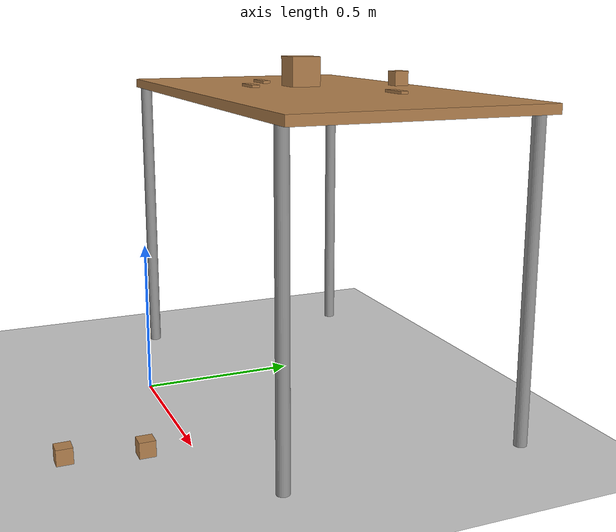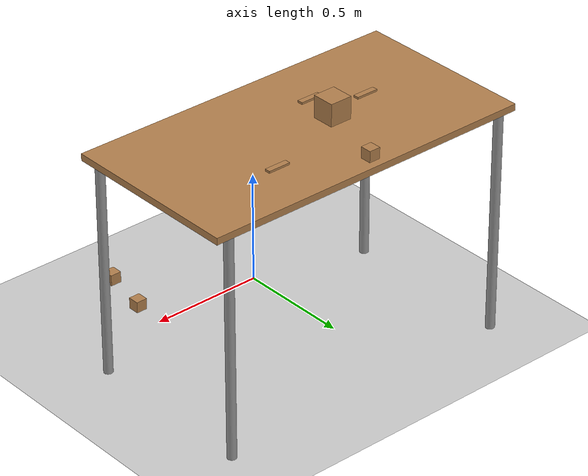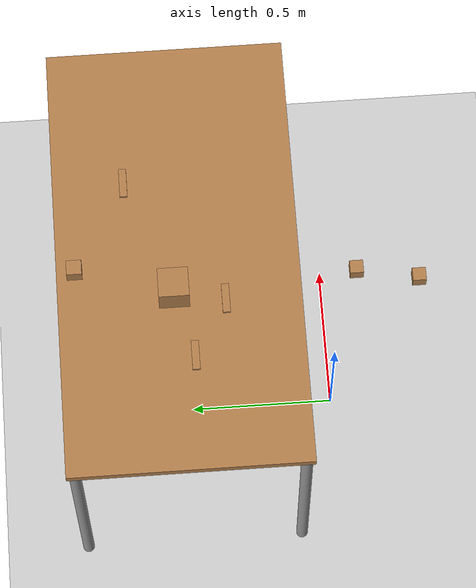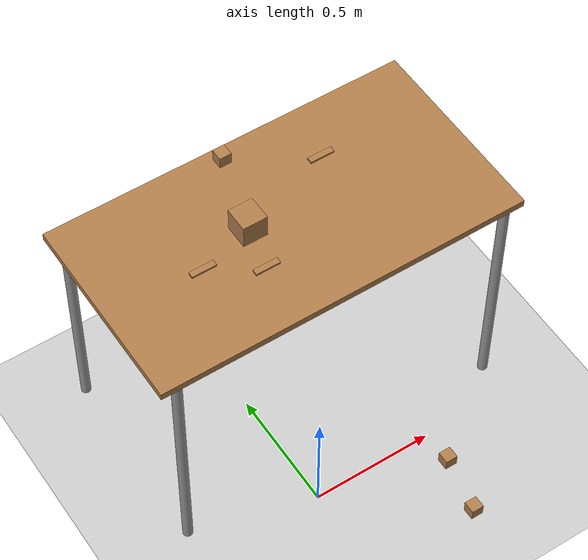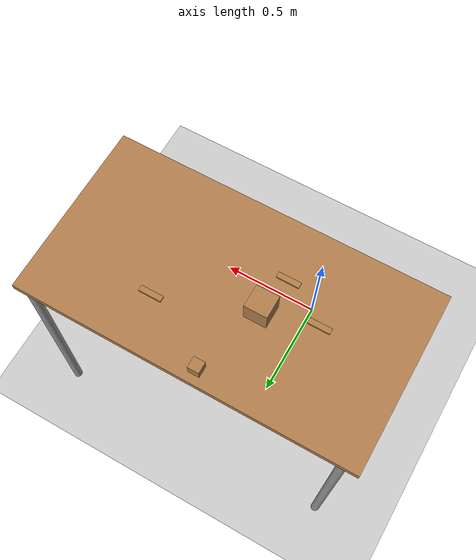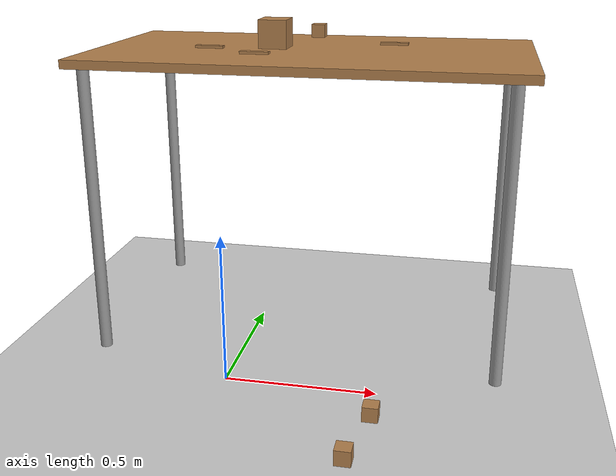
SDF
<sdf version="1.7">
 <world name="default">
  <light name="sun" type="directional">
   <pose>0 0 10 0 -0 0</pose>
   <diffuse>0.8 0.8 0.8 1</diffuse>
   <specular>0.2 0.2 0.2 1</specular>
   <attenuation>
    <range>1000</range>
    <constant>0.9</constant>
    <linear>0.01</linear>
    <quadratic>0.001</quadratic>
   </attenuation>
   <direction>-0.5 0.1 -0.9</direction>
   <spot><inner_angle>0</inner_angle><outer_angle>0</outer_angle><falloff>0</falloff></spot>
  </light>
  <model name="ground_plane">
   <static>1</static>
   <link name="link">
    <collision name="collision">
     <geometry><plane><normal>0 0 1</normal><size>100 100</size></plane></geometry>
     <surface>
      <contact><collide_bitmask>65535</collide_bitmask></contact>
      <friction><ode><mu>100</mu><mu2>50</mu2></ode></friction>
     </surface>
    </collision>
    <visual name="visual">
     <cast_shadows>0</cast_shadows>
     <geometry><plane><normal>0 0 1</normal><size>100 100</size></plane></geometry>
     <material>
      <script><uri>file://media/materials/scripts/gazebo.material</uri><name>Gazebo/Grey</name></script>
     </material>
    </visual>
   </link>
  </model>
  <gravity>0 0 -9.8</gravity>
  <magnetic_field>6e-06 2.3e-05 -4.2e-05</magnetic_field>
  <atmosphere type="adiabatic"/>
  <physics type="ode">
   <max_step_size>0.001</max_step_size>
   <real_time_factor>1</real_time_factor>
   <real_time_update_rate>1000</real_time_update_rate>
  </physics>
  <scene><ambient>0.4 0.4 0.4 1</ambient><background>0.7 0.7 0.7 1</background><shadows>1</shadows></scene>
  <spherical_coordinates>
   <surface_model>EARTH_WGS84</surface_model>
   <latitude_deg>0</latitude_deg>
   <longitude_deg>0</longitude_deg>
   <elevation>0</elevation>
   <heading_deg>0</heading_deg>
  </spherical_coordinates>
  <model name="table">
   <static>1</static>
   <link name="link">
    <collision name="surface">
     <pose>0 0 1 0 -0 0</pose>
     <geometry><box><size>1.5 0.8 0.03</size></box></geometry>
     <surface><friction><ode><mu>0.6</mu><mu2>0.6</mu2></ode></friction></surface>
    </collision>
    <visual name="visual1">
     <pose>0 0 1 0 -0 0</pose>
     <geometry><box><size>1.5 0.8 0.03</size></box></geometry>
     <material>
      <script><uri>file://media/materials/scripts/gazebo.material</uri><name>Gazebo/Wood</name></script>
     </material>
    </visual>
    <collision name="front_left_leg">
     <pose>0.68 0.38 0.5 0 -0 0</pose>
     <geometry><cylinder><radius>0.02</radius><length>1</length></cylinder></geometry>
    </collision>
    <visual name="front_left_leg">
     <pose>0.68 0.38 0.5 0 -0 0</pose>
     <geometry><cylinder><radius>0.02</radius><length>1</length></cylinder></geometry>
     <material>
      <script><uri>file://media/materials/scripts/gazebo.material</uri><name>Gazebo/Grey</name></script>
     </material>
    </visual>
    <collision name="front_right_leg">
     <pose>0.68 -0.38 0.5 0 -0 0</pose>
     <geometry><cylinder><radius>0.02</radius><length>1</length></cylinder></geometry>
    </collision>
    <visual name="front_right_leg">
     <pose>0.68 -0.38 0.5 0 -0 0</pose>
     <geometry><cylinder><radius>0.02</radius><length>1</length></cylinder></geometry>
     <material>
      <script><uri>file://media/materials/scripts/gazebo.material</uri><name>Gazebo/Grey</name></script>
     </material>
    </visual>
    <collision name="back_right_leg">
     <pose>-0.68 -0.38 0.5 0 -0 0</pose>
     <geometry><cylinder><radius>0.02</radius><length>1</length></cylinder></geometry>
    </collision>
    <visual name="back_right_leg">
     <pose>-0.68 -0.38 0.5 0 -0 0</pose>
     <geometry><cylinder><radius>0.02</radius><length>1</length></cylinder></geometry>
     <material>
      <script><uri>file://media/materials/scripts/gazebo.material</uri><name>Gazebo/Grey</name></script>
     </material>
    </visual>
    <collision name="back_left_leg">
     <pose>-0.68 0.38 0.5 0 -0 0</pose>
     <geometry><cylinder><radius>0.02</radius><length>1</length></cylinder></geometry>
    </collision>
    <visual name="back_left_leg">
     <pose>-0.68 0.38 0.5 0 -0 0</pose>
     <geometry><cylinder><radius>0.02</radius><length>1</length></cylinder></geometry>
     <material>
      <script><uri>file://media/materials/scripts/gazebo.material</uri><name>Gazebo/Grey</name></script>
     </material>
    </visual>
   </link>
   <pose>0.193465 0.522912 0 0 -0 0</pose>
  </model>
  <model name="wood_cube_5cm">
   <link name="link">
    <pose>0 0 0.025 0 -0 0</pose>
    <inertial>
     <mass>0.0565</mass>
     <inertia>
      <ixx>2.35417e-05</ixx>
      <ixy>0</ixy>
      <ixz>0</ixz>
      <iyy>2.35417e-05</iyy>
      <iyz>0</iyz>
      <izz>2.35417e-05</izz>
     </inertia>
    </inertial>
    <collision name="collision">
     <geometry><box><size>0.05 0.05 0.05</size></box></geometry>
     <surface>
      <contact>
       <poissons_ratio>0.347</poissons_ratio>
       <elastic_modulus>8.8e+09</elastic_modulus>
       <ode><kp>100000</kp><kd>1</kd><max_vel>1</max_vel><min_depth>0.001</min_depth></ode>
      </contact>
      <friction>
       <torsional>
        <coefficient>1</coefficient>
        <use_patch_radius>0</use_patch_radius>
        <surface_radius>0.05</surface_radius>
       </torsional>
      </friction>
     </surface>
    </collision>
    <visual name="visual">
     <geometry><box><size>0.05 0.05 0.05</size></box></geometry>
     <material>
      <script><uri>file://media/materials/scripts/gazebo.material</uri><name>Gazebo/Wood</name></script>
     </material>
    </visual>
   </link>
   <pose>0.455654 -0.366261 -0.001001 0 -0 0</pose>
  </model>
  <model name="wood_cube_5cm_0">
   <link name="link">
    <pose>0 0 0.025 0 -0 0</pose>
    <inertial>
     <mass>0.0565</mass>
     <inertia>
      <ixx>2.35417e-05</ixx>
      <ixy>0</ixy>
      <ixz>0</ixz>
      <iyy>2.35417e-05</iyy>
      <iyz>0</iyz>
      <izz>2.35417e-05</izz>
     </inertia>
    </inertial>
    <collision name="collision">
     <geometry><box><size>0.05 0.05 0.05</size></box></geometry>
     <surface>
      <contact>
       <poissons_ratio>0.347</poissons_ratio>
       <elastic_modulus>8.8e+09</elastic_modulus>
       <ode><kp>100000</kp><kd>1</kd><max_vel>1</max_vel><min_depth>0.001</min_depth></ode>
      </contact>
      <friction>
       <torsional>
        <coefficient>1</coefficient>
        <use_patch_radius>0</use_patch_radius>
        <surface_radius>0.05</surface_radius>
       </torsional>
      </friction>
     </surface>
    </collision>
    <visual name="visual">
     <geometry><box><size>0.05 0.05 0.05</size></box></geometry>
     <material>
      <script><uri>file://media/materials/scripts/gazebo.material</uri><name>Gazebo/Wood</name></script>
     </material>
    </visual>
   </link>
   <pose>0.146203 0.862426 1.014 -0 -0 -0</pose>
  </model>
  <model name="wood_cube_5cm_1">
   <link name="link">
    <pose>0 0 0.025 0 -0 0</pose>
    <inertial>
     <mass>0.0565</mass>
     <inertia>
      <ixx>2.35417e-05</ixx>
      <ixy>0</ixy>
      <ixz>0</ixz>
      <iyy>2.35417e-05</iyy>
      <iyz>0</iyz>
      <izz>2.35417e-05</izz>
     </inertia>
    </inertial>
    <collision name="collision">
     <geometry><box><size>0.05 0.05 0.05</size></box></geometry>
     <surface>
      <contact>
       <poissons_ratio>0.347</poissons_ratio>
       <elastic_modulus>8.8e+09</elastic_modulus>
       <ode><kp>100000</kp><kd>1</kd><max_vel>1</max_vel><min_depth>0.001</min_depth></ode>
      </contact>
      <friction>
       <torsional>
        <coefficient>1</coefficient>
        <use_patch_radius>0</use_patch_radius>
        <surface_radius>0.05</surface_radius>
       </torsional>
      </friction>
     </surface>
    </collision>
    <visual name="visual">
     <geometry><box><size>0.05 0.05 0.05</size></box></geometry>
     <material>
      <script><uri>file://media/materials/scripts/gazebo.material</uri><name>Gazebo/Wood</name></script>
     </material>
    </visual>
   </link>
   <pose>0.501229 -0.137625 -0.001001 0 -0 0</pose>
  </model>
  <model name="wood_cube_10cm">
   <link name="link">
    <pose>0 0 0.05 0 -0 0</pose>
    <inertial>
     <mass>0.5167</mass>
     <inertia>
      <ixx>0.000861167</ixx>
      <ixy>0</ixy>
      <ixz>0</ixz>
      <iyy>0.000861167</iyy>
      <iyz>0</iyz>
      <izz>0.000861167</izz>
     </inertia>
    </inertial>
    <collision name="collision">
     <geometry><box><size>0.1 0.1 0.1</size></box></geometry>
     <surface>
      <contact>
       <poissons_ratio>0.347</poissons_ratio>
       <elastic_modulus>8.8e+09</elastic_modulus>
       <ode><kp>100000</kp><kd>100</kd><max_vel>100</max_vel><min_depth>0.001</min_depth></ode>
      </contact>
      <friction>
       <torsional>
        <coefficient>1</coefficient>
        <use_patch_radius>0</use_patch_radius>
        <surface_radius>0.01</surface_radius>
       </torsional>
      </friction>
     </surface>
    </collision>
    <visual name="visual">
     <geometry><box><size>0.1 0.1 0.1</size></box></geometry>
     <material>
      <script><uri>file://media/materials/scripts/gazebo.material</uri><name>Gazebo/Wood</name></script>
     </material>
    </visual>
   </link>
   <pose>0.051801 0.541856 1.01399 0 -0 0</pose>
  </model>
  <model name="wood_block_10_2_1cm">
   <link name="link">
    <pose>0 0 0.005 0 -0 0</pose>
    <inertial>
     <mass>0.0125</mass>
     <inertia>
      <ixx>7.55208e-07</ixx>
      <ixy>0</ixy>
      <ixz>0</ixz>
      <iyy>1.05208e-05</iyy>
      <iyz>0</iyz>
      <izz>1.10677e-05</izz>
     </inertia>
    </inertial>
    <collision name="collision">
     <geometry><box><size>0.1 0.025 0.01</size></box></geometry>
     <surface>
      <contact>
       <poissons_ratio>0.347</poissons_ratio>
       <elastic_modulus>8.8e+09</elastic_modulus>
       <ode><kp>100000</kp><kd>1</kd><max_vel>1</max_vel><min_depth>0.001</min_depth></ode>
      </contact>
      <friction>
       <torsional>
        <coefficient>1</coefficient>
        <use_patch_radius>0</use_patch_radius>
        <surface_radius>0.05</surface_radius>
       </torsional>
      </friction>
     </surface>
    </collision>
    <visual name="visual">
     <geometry><box><size>0.1 0.025 0.01</size></box></geometry>
     <material>
      <script><uri>file://media/materials/scripts/gazebo.material</uri><name>Gazebo/Wood</name></script>
     </material>
    </visual>
   </link>
   <pose>-0.170217 0.48455 1.014 0 0 -4e-06</pose>
  </model>
  <model name="wood_block_10_2_1cm_0">
   <link name="link">
    <pose>0 0 0.005 0 -0 0</pose>
    <inertial>
     <mass>0.0125</mass>
     <inertia>
      <ixx>7.55208e-07</ixx>
      <ixy>0</ixy>
      <ixz>0</ixz>
      <iyy>1.05208e-05</iyy>
      <iyz>0</iyz>
      <izz>1.10677e-05</izz>
     </inertia>
    </inertial>
    <collision name="collision">
     <geometry><box><size>0.1 0.025 0.01</size></box></geometry>
     <surface>
      <contact>
       <poissons_ratio>0.347</poissons_ratio>
       <elastic_modulus>8.8e+09</elastic_modulus>
       <ode><kp>100000</kp><kd>1</kd><max_vel>1</max_vel><min_depth>0.001</min_depth></ode>
      </contact>
      <friction>
       <torsional>
        <coefficient>1</coefficient>
        <use_patch_radius>0</use_patch_radius>
        <surface_radius>0.05</surface_radius>
       </torsional>
      </friction>
     </surface>
    </collision>
    <visual name="visual">
     <geometry><box><size>0.1 0.025 0.01</size></box></geometry>
     <material>
      <script><uri>file://media/materials/scripts/gazebo.material</uri><name>Gazebo/Wood</name></script>
     </material>
    </visual>
   </link>
   <pose>0.020643 0.373616 1.014 0 -0 0</pose>
  </model>
  <model name="wood_block_10_2_1cm_1">
   <link name="link">
    <pose>0 0 0.005 0 -0 0</pose>
    <inertial>
     <mass>0.0125</mass>
     <inertia>
      <ixx>7.55208e-07</ixx>
      <ixy>0</ixy>
      <ixz>0</ixz>
      <iyy>1.05208e-05</iyy>
      <iyz>0</iyz>
      <izz>1.10677e-05</izz>
     </inertia>
    </inertial>
    <collision name="collision">
     <geometry><box><size>0.1 0.025 0.01</size></box></geometry>
     <surface>
      <contact>
       <poissons_ratio>0.347</poissons_ratio>
       <elastic_modulus>8.8e+09</elastic_modulus>
       <ode><kp>100000</kp><kd>1</kd><max_vel>1</max_vel><min_depth>0.001</min_depth></ode>
      </contact>
      <friction>
       <torsional>
        <coefficient>1</coefficient>
        <use_patch_radius>0</use_patch_radius>
        <surface_radius>0.05</surface_radius>
       </torsional>
      </friction>
     </surface>
    </collision>
    <visual name="visual">
     <geometry><box><size>0.1 0.025 0.01</size></box></geometry>
     <material>
      <script><uri>file://media/materials/scripts/gazebo.material</uri><name>Gazebo/Wood</name></script>
     </material>
    </visual>
   </link>
   <pose>0.4549 0.687356 1.014 0 -0 0</pose>
  </model>
 </world>
</sdf>
